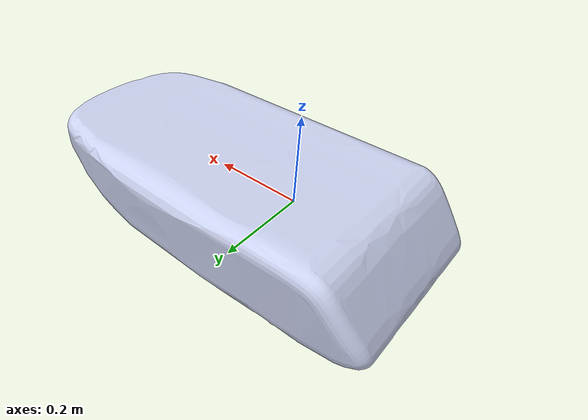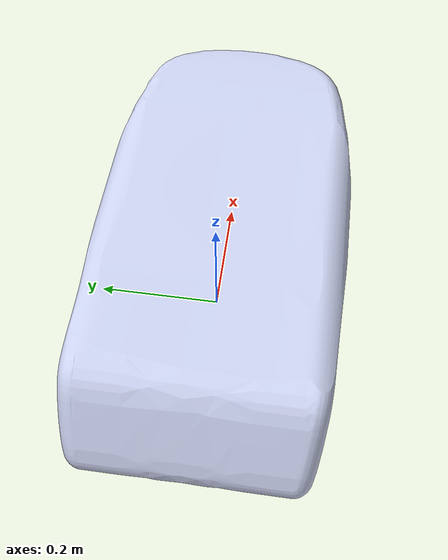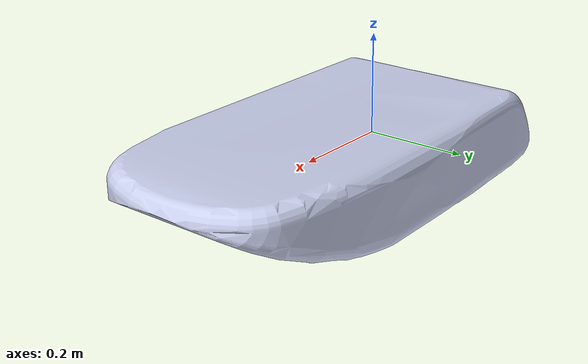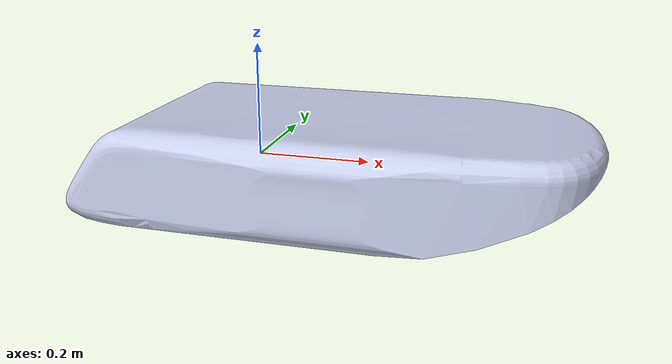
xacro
<?xml version="1.0"?>
<robot xmlns:xacro="http://ros.org/wiki/xacro" name="bathyboat">
  <!-- Required arg for melodic and kinetic... -->
  <xacro:arg name="namespace" default="bathyboat"/>
  <xacro:property name="namespace" value="$(arg namespace)" scope="global" />
  <!-- Macro for creating the main collisions as simple shapes. -->
  <xacro:macro name="main_collisions" params="prefix reflect:=1">
    <!-- Box -->
    <collision name="${prefix}_joint">
      <origin xyz="0 0 0" rpy="0 -0.6 0" />
      <geometry>
        <box size="0.8 0.2 0.1" />
      </geometry>
    </collision>
  </xacro:macro>

  <link name="${namespace}/base_link">
  </link>

  <joint name="${namespace}/dummy_joint" type = "fixed">
    <parent link="${namespace}/base_link"/>
    <child link="${namespace}/dummy_link"/>
  </joint>

  <!-- Basic model of bathyboat -->
  <link name="${namespace}/dummy_link">
    <visual>
      <geometry>
        <mesh filename="package://boat_model/src/CAD/bathydrone.dae"/>
      </geometry>
    </visual>

    <!-- Left base collisions -->
    <xacro:main_collisions prefix="left" reflect="1" />

    <!-- Right side collisions -->
    <xacro:main_collisions prefix="right" reflect="-1" />

     <!-- Top base -->
    <collision name="top_base">
      <origin xyz="0 0 0" rpy="0 0 0" />
      <geometry>
        <box size="1.85 1 0.1" />
      </geometry>
    </collision>

    <inertial>
      <!-- From Tony sheet -->
      <mass value="6.0"/>
      <inertia ixx="120.0" ixy="0.0" ixz="0.0" iyy="393" iyz="0.0" izz="446.0"/>
    </inertial>
  </link>

</robot>
